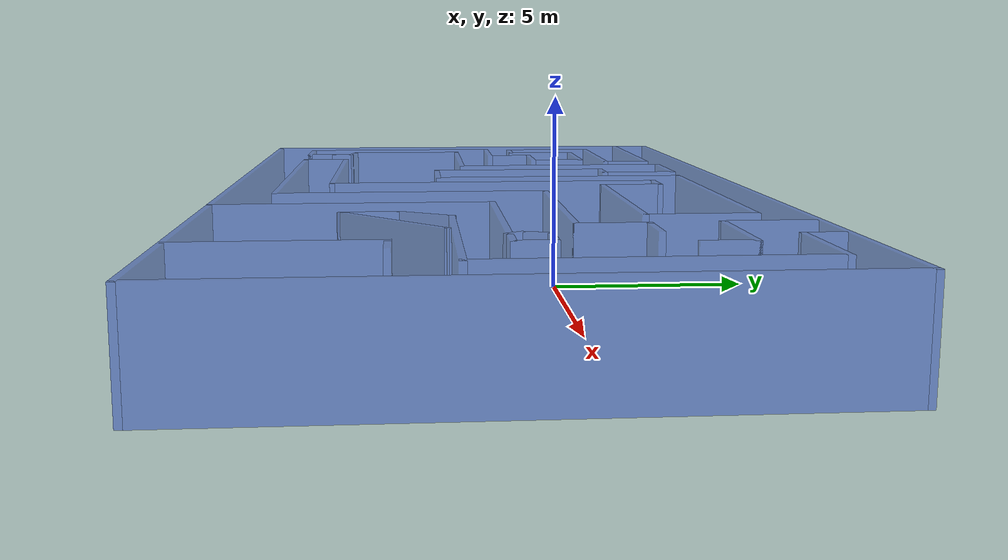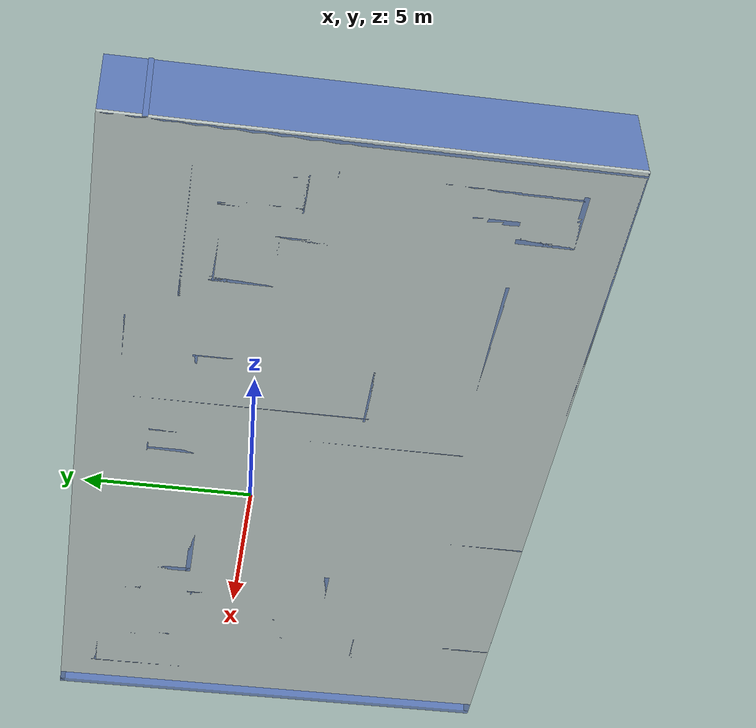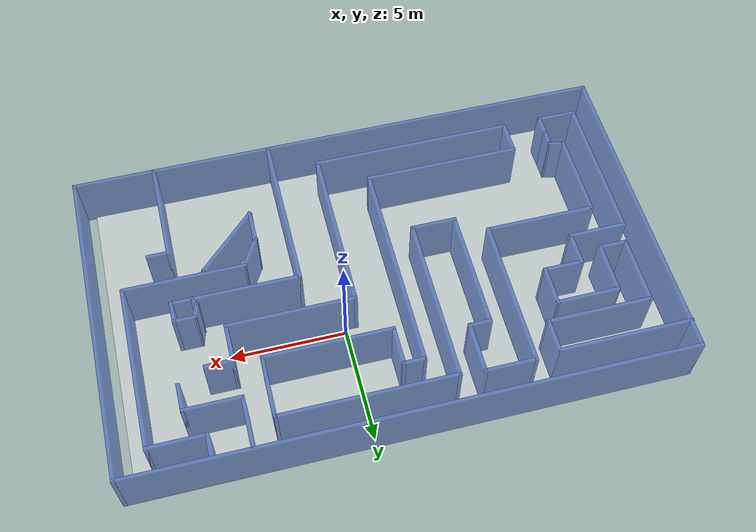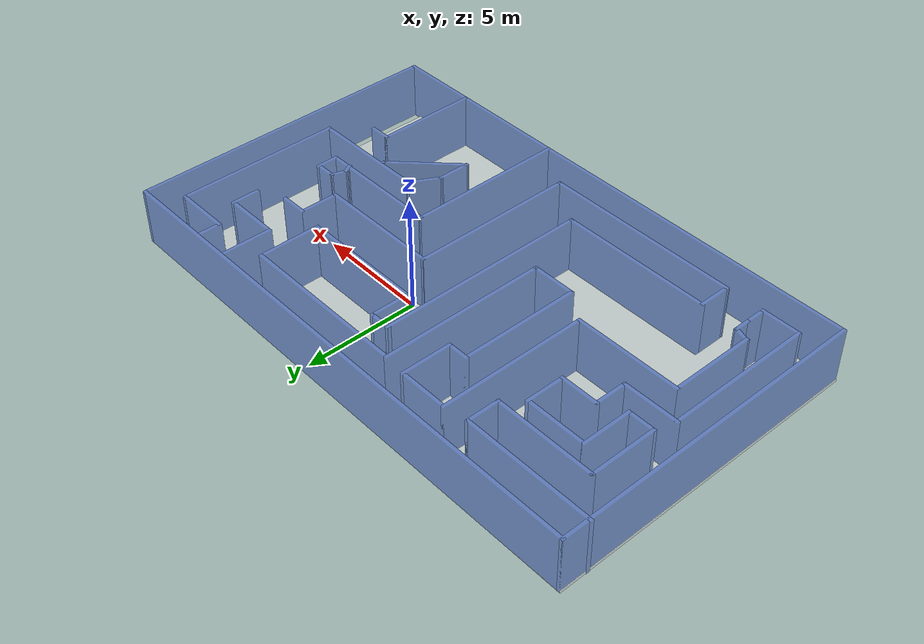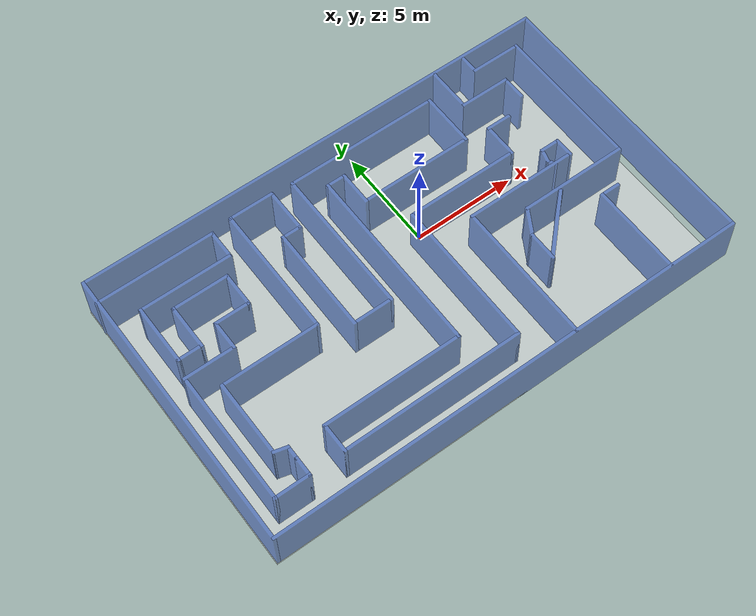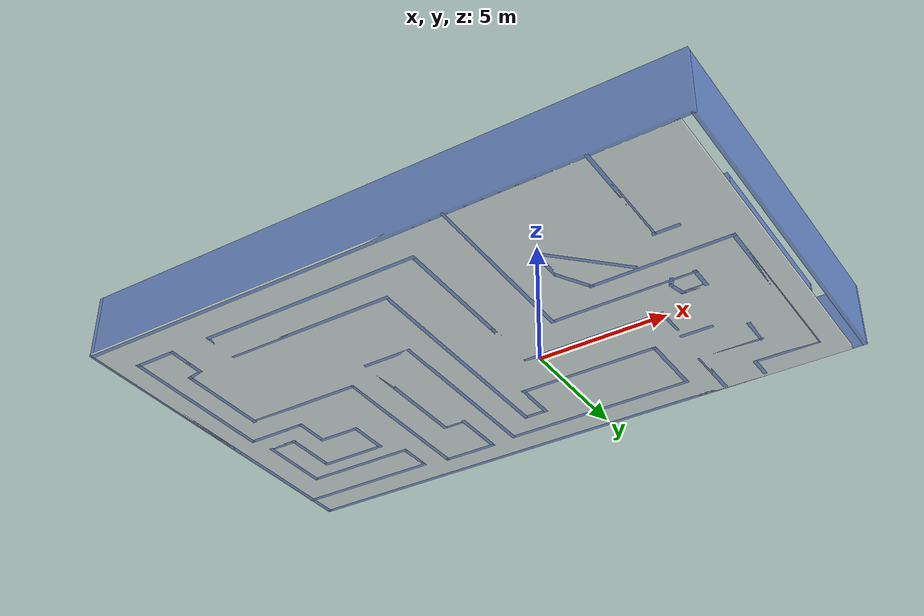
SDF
<?xml version='1.0'?>
<sdf version='1.6'>
  <model name='floor_smal'>
    <pose frame=''>-1.65189 -1.66054 0 0 -0 0</pose>
    <link name='Floor'>
      <collision name='Floor'>
        <geometry>
          <box>
            <size>524.25 169.5 0.1</size>
          </box>
        </geometry>
        <pose frame=''>0 0 0.05 0 -0 0</pose>
      </collision>
      <visual name='Floor'>
        <pose frame=''>0 0 0.05 0 -0 0</pose>
        <geometry>
          <box>
            <size>23 14 0.1</size>
          </box>
        </geometry>
        <material>
          <script>
            <uri>file://media/materials/scripts/gazebo.material</uri>
            <name>Gazebo/WhiteTransparent</name>
          </script>
          <ambient>0 0 0 0</ambient>
        </material>
        <meta>
          <layer>1</layer>
        </meta>
      </visual>
      <pose frame=''>-0.250009 -2e-06 0 0 -0 0</pose>
    </link>
    <link name='Wall_10'>
      <collision name='Wall_10_Collision'>
        <geometry>
          <box>
            <size>5.75 0.15 2.5</size>
          </box>
        </geometry>
        <pose frame=''>0 0 1.25 0 -0 0</pose>
      </collision>
      <visual name='Wall_10_Visual'>
        <pose frame=''>0 0 1.25 0 -0 0</pose>
        <geometry>
          <box>
            <size>5.75 0.15 2.5</size>
          </box>
        </geometry>
        <material>
          <script>
            <uri>file://media/materials/scripts/gazebo.material</uri>
            <name>Gazebo/BlueTransparent</name>
          </script>
          <ambient>1 1 1 1</ambient>
        </material>
        <meta>
          <layer>0</layer>
        </meta>
      </visual>
      <pose frame=''>-8.89523 5.77805 0 0 -0 0</pose>
    </link>
    <link name='Wall_11'>
      <collision name='Wall_11_Collision'>
        <geometry>
          <box>
            <size>1.5 0.15 2.5</size>
          </box>
        </geometry>
        <pose frame=''>0 0 1.25 0 -0 0</pose>
      </collision>
      <visual name='Wall_11_Visual'>
        <pose frame=''>0 0 1.25 0 -0 0</pose>
        <geometry>
          <box>
            <size>1.5 0.15 2.5</size>
          </box>
        </geometry>
        <material>
          <script>
            <uri>file://media/materials/scripts/gazebo.material</uri>
            <name>Gazebo/BlueTransparent</name>
          </script>
          <ambient>1 1 1 1</ambient>
        </material>
        <meta>
          <layer>0</layer>
        </meta>
      </visual>
      <pose frame=''>-6.09523 5.10305 0 0 -0 -1.5708</pose>
    </link>
    <link name='Wall_12'>
      <collision name='Wall_12_Collision'>
        <geometry>
          <box>
            <size>4.5 0.15 2.5</size>
          </box>
        </geometry>
        <pose frame=''>0 0 1.25 0 -0 0</pose>
      </collision>
      <visual name='Wall_12_Visual'>
        <pose frame=''>0 0 1.25 0 -0 0</pose>
        <geometry>
          <box>
            <size>4.5 0.15 2.5</size>
          </box>
        </geometry>
        <material>
          <script>
            <uri>file://media/materials/scripts/gazebo.material</uri>
            <name>Gazebo/BlueTransparent</name>
          </script>
          <ambient>1 1 1 1</ambient>
        </material>
        <meta>
          <layer>0</layer>
        </meta>
      </visual>
      <pose frame=''>-8.27023 4.42805 0 0 -0 3.14159</pose>
    </link>
    <link name='Wall_13'>
      <collision name='Wall_13_Collision'>
        <geometry>
          <box>
            <size>3 0.15 2.5</size>
          </box>
        </geometry>
        <pose frame=''>0 0 1.25 0 -0 0</pose>
      </collision>
      <visual name='Wall_13_Visual'>
        <pose frame=''>0 0 1.25 0 -0 0</pose>
        <geometry>
          <box>
            <size>3 0.15 2.5</size>
          </box>
        </geometry>
        <material>
          <script>
            <uri>file://media/materials/scripts/gazebo.material</uri>
            <name>Gazebo/BlueTransparent</name>
          </script>
          <ambient>1 1 1 1</ambient>
        </material>
        <meta>
          <layer>0</layer>
        </meta>
      </visual>
      <pose frame=''>-10.4452 3.00305 0 0 -0 -1.5708</pose>
    </link>
    <link name='Wall_14'>
      <collision name='Wall_14_Collision'>
        <geometry>
          <box>
            <size>1.25 0.15 2.5</size>
          </box>
        </geometry>
        <pose frame=''>0 0 1.25 0 -0 0</pose>
      </collision>
      <visual name='Wall_14_Visual'>
        <pose frame=''>0 0 1.25 0 -0 0</pose>
        <geometry>
          <box>
            <size>1.25 0.15 2.5</size>
          </box>
        </geometry>
        <material>
          <script>
            <uri>file://media/materials/scripts/gazebo.material</uri>
            <name>Gazebo/BlueTransparent</name>
          </script>
          <ambient>1 1 1 1</ambient>
        </material>
        <meta>
          <layer>0</layer>
        </meta>
      </visual>
      <pose frame=''>-9.89523 1.57805 0 0 -0 0</pose>
    </link>
    <link name='Wall_15'>
      <collision name='Wall_15_Collision'>
        <geometry>
          <box>
            <size>2.25 0.15 2.5</size>
          </box>
        </geometry>
        <pose frame=''>0 0 1.25 0 -0 0</pose>
      </collision>
      <visual name='Wall_15_Visual'>
        <pose frame=''>0 0 1.25 0 -0 0</pose>
        <geometry>
          <box>
            <size>2.25 0.15 2.5</size>
          </box>
        </geometry>
        <material>
          <script>
            <uri>file://media/materials/scripts/gazebo.material</uri>
            <name>Gazebo/BlueTransparent</name>
          </script>
          <ambient>1 1 1 1</ambient>
        </material>
        <meta>
          <layer>0</layer>
        </meta>
      </visual>
      <pose frame=''>-9.34523 2.62805 0 0 -0 1.5708</pose>
    </link>
    <link name='Wall_16'>
      <collision name='Wall_16_Collision'>
        <geometry>
          <box>
            <size>2.75 0.15 2.5</size>
          </box>
        </geometry>
        <pose frame=''>0 0 1.25 0 -0 0</pose>
      </collision>
      <visual name='Wall_16_Visual'>
        <pose frame=''>0 0 1.25 0 -0 0</pose>
        <geometry>
          <box>
            <size>2.75 0.15 2.5</size>
          </box>
        </geometry>
        <material>
          <script>
            <uri>file://media/materials/scripts/gazebo.material</uri>
            <name>Gazebo/BlueTransparent</name>
          </script>
          <ambient>1 1 1 1</ambient>
        </material>
        <meta>
          <layer>0</layer>
        </meta>
      </visual>
      <pose frame=''>-8.04523 3.67805 0 0 -0 0</pose>
    </link>
    <link name='Wall_17'>
      <collision name='Wall_17_Collision'>
        <geometry>
          <box>
            <size>1.75 0.15 2.5</size>
          </box>
        </geometry>
        <pose frame=''>0 0 1.25 0 -0 0</pose>
      </collision>
      <visual name='Wall_17_Visual'>
        <pose frame=''>0 0 1.25 0 -0 0</pose>
        <geometry>
          <box>
            <size>1.75 0.15 2.5</size>
          </box>
        </geometry>
        <material>
          <script>
            <uri>file://media/materials/scripts/gazebo.material</uri>
            <name>Gazebo/BlueTransparent</name>
          </script>
          <ambient>1 1 1 1</ambient>
        </material>
        <meta>
          <layer>0</layer>
        </meta>
      </visual>
      <pose frame=''>-6.74523 2.87805 0 0 -0 -1.5708</pose>
    </link>
    <link name='Wall_18'>
      <collision name='Wall_18_Collision'>
        <geometry>
          <box>
            <size>1.75 0.15 2.5</size>
          </box>
        </geometry>
        <pose frame=''>0 0 1.25 0 -0 0</pose>
      </collision>
      <visual name='Wall_18_Visual'>
        <pose frame=''>0 0 1.25 0 -0 0</pose>
        <geometry>
          <box>
            <size>1.75 0.15 2.5</size>
          </box>
        </geometry>
        <material>
          <script>
            <uri>file://media/materials/scripts/gazebo.material</uri>
            <name>Gazebo/BlueTransparent</name>
          </script>
          <ambient>1 1 1 1</ambient>
        </material>
        <meta>
          <layer>0</layer>
        </meta>
      </visual>
      <pose frame=''>-7.54523 2.07805 0 0 -0 3.14159</pose>
    </link>
    <link name='Wall_19'>
      <collision name='Wall_19_Collision'>
        <geometry>
          <box>
            <size>1.5 0.15 2.5</size>
          </box>
        </geometry>
        <pose frame=''>0 0 1.25 0 -0 0</pose>
      </collision>
      <visual name='Wall_19_Visual'>
        <pose frame=''>0 0 1.25 0 -0 0</pose>
        <geometry>
          <box>
            <size>1.5 0.15 2.5</size>
          </box>
        </geometry>
        <material>
          <script>
            <uri>file://media/materials/scripts/gazebo.material</uri>
            <name>Gazebo/BlueTransparent</name>
          </script>
          <ambient>1 1 1 1</ambient>
        </material>
        <meta>
          <layer>0</layer>
        </meta>
      </visual>
      <pose frame=''>-8.34523 1.40305 0 0 -0 -1.5708</pose>
    </link>
    <link name='Wall_20'>
      <collision name='Wall_20_Collision'>
        <geometry>
          <box>
            <size>2.5 0.15 2.5</size>
          </box>
        </geometry>
        <pose frame=''>0 0 1.25 0 -0 0</pose>
      </collision>
      <visual name='Wall_20_Visual'>
        <pose frame=''>0 0 1.25 0 -0 0</pose>
        <geometry>
          <box>
            <size>2.5 0.15 2.5</size>
          </box>
        </geometry>
        <material>
          <script>
            <uri>file://media/materials/scripts/gazebo.material</uri>
            <name>Gazebo/BlueTransparent</name>
          </script>
          <ambient>1 1 1 1</ambient>
        </material>
        <meta>
          <layer>0</layer>
        </meta>
      </visual>
      <pose frame=''>-9.52023 0.728051 0 0 -0 3.14159</pose>
    </link>
    <link name='Wall_21'>
      <collision name='Wall_21_Collision'>
        <geometry>
          <box>
            <size>6.5 0.15 2.5</size>
          </box>
        </geometry>
        <pose frame=''>0 0 1.25 0 -0 0</pose>
      </collision>
      <visual name='Wall_21_Visual'>
        <pose frame=''>0 0 1.25 0 -0 0</pose>
        <geometry>
          <box>
            <size>6.5 0.15 2.5</size>
          </box>
        </geometry>
        <material>
          <script>
            <uri>file://media/materials/scripts/gazebo.material</uri>
            <name>Gazebo/BlueTransparent</name>
          </script>
          <ambient>1 1 1 1</ambient>
        </material>
        <meta>
          <layer>0</layer>
        </meta>
      </visual>
      <pose frame=''>-10.6952 -2.44695 0 0 -0 -1.5708</pose>
    </link>
    <link name='Wall_22'>
      <collision name='Wall_22_Collision'>
        <geometry>
          <box>
            <size>1.75 0.15 2.5</size>
          </box>
        </geometry>
        <pose frame=''>0 0 1.25 0 -0 0</pose>
      </collision>
      <visual name='Wall_22_Visual'>
        <pose frame=''>0 0 1.25 0 -0 0</pose>
        <geometry>
          <box>
            <size>1.75 0.15 2.5</size>
          </box>
        </geometry>
        <material>
          <script>
            <uri>file://media/materials/scripts/gazebo.material</uri>
            <name>Gazebo/BlueTransparent</name>
          </script>
          <ambient>1 1 1 1</ambient>
        </material>
        <meta>
          <layer>0</layer>
        </meta>
      </visual>
      <pose frame=''>-9.89523 -5.62195 0 0 -0 0</pose>
    </link>
    <link name='Wall_23'>
      <collision name='Wall_23_Collision'>
        <geometry>
          <box>
            <size>1 0.15 2.5</size>
          </box>
        </geometry>
        <pose frame=''>0 0 1.25 0 -0 0</pose>
      </collision>
      <visual name='Wall_23_Visual'>
        <pose frame=''>0 0 1.25 0 -0 0</pose>
        <geometry>
          <box>
            <size>1 0.15 2.5</size>
          </box>
        </geometry>
        <material>
          <script>
            <uri>file://media/materials/scripts/gazebo.material</uri>
            <name>Gazebo/BlueTransparent</name>
          </script>
          <ambient>1 1 1 1</ambient>
        </material>
        <meta>
          <layer>0</layer>
        </meta>
      </visual>
      <pose frame=''>-9.09523 -5.19695 0 0 -0 1.5708</pose>
    </link>
    <link name='Wall_24'>
      <collision name='Wall_24_Collision'>
        <geometry>
          <box>
            <size>0.75 0.15 2.5</size>
          </box>
        </geometry>
        <pose frame=''>0 0 1.25 0 -0 0</pose>
      </collision>
      <visual name='Wall_24_Visual'>
        <pose frame=''>0 0 1.25 0 -0 0</pose>
        <geometry>
          <box>
            <size>0.75 0.15 2.5</size>
          </box>
        </geometry>
        <material>
          <script>
            <uri>file://media/materials/scripts/gazebo.material</uri>
            <name>Gazebo/BlueTransparent</name>
          </script>
          <ambient>1 1 1 1</ambient>
        </material>
        <meta>
          <layer>0</layer>
        </meta>
      </visual>
      <pose frame=''>-9.09523 -4.47195 0 0 -0 1.5708</pose>
    </link>
    <link name='Wall_25'>
      <collision name='Wall_25_Collision'>
        <geometry>
          <box>
            <size>0.75 0.15 2.5</size>
          </box>
        </geometry>
        <pose frame=''>0 0 1.25 0 -0 0</pose>
      </collision>
      <visual name='Wall_25_Visual'>
        <pose frame=''>0 0 1.25 0 -0 0</pose>
        <geometry>
          <box>
            <size>0.75 0.15 2.5</size>
          </box>
        </geometry>
        <material>
          <script>
            <uri>file://media/materials/scripts/gazebo.material</uri>
            <name>Gazebo/BlueTransparent</name>
          </script>
          <ambient>1 1 1 1</ambient>
        </material>
        <meta>
          <layer>0</layer>
        </meta>
      </visual>
      <pose frame=''>-9.385 -4.0943 0 0 -0 2.87979</pose>
    </link>
    <link name='Wall_26'>
      <collision name='Wall_26_Collision'>
        <geometry>
          <box>
            <size>3.75 0.15 2.5</size>
          </box>
        </geometry>
        <pose frame=''>0 0 1.25 0 -0 0</pose>
      </collision>
      <visual name='Wall_26_Visual'>
        <pose frame=''>0 0 1.25 0 -0 0</pose>
        <geometry>
          <box>
            <size>3.75 0.15 2.5</size>
          </box>
        </geometry>
        <material>
          <script>
            <uri>file://media/materials/scripts/gazebo.material</uri>
            <name>Gazebo/BlueTransparent</name>
          </script>
          <ambient>1 1 1 1</ambient>
        </material>
        <meta>
          <layer>0</layer>
        </meta>
      </visual>
      <pose frame=''>-9.67478 -2.21666 0 0 -0 1.5708</pose>
    </link>
    <link name='Wall_27'>
      <collision name='Wall_27_Collision'>
        <geometry>
          <box>
            <size>4.75 0.15 2.5</size>
          </box>
        </geometry>
        <pose frame=''>0 0 1.25 0 -0 0</pose>
      </collision>
      <visual name='Wall_27_Visual'>
        <pose frame=''>0 0 1.25 0 -0 0</pose>
        <geometry>
          <box>
            <size>4.75 0.15 2.5</size>
          </box>
        </geometry>
        <material>
          <script>
            <uri>file://media/materials/scripts/gazebo.material</uri>
            <name>Gazebo/BlueTransparent</name>
          </script>
          <ambient>1 1 1 1</ambient>
        </material>
        <meta>
          <layer>0</layer>
        </meta>
      </visual>
      <pose frame=''>-7.37478 -0.416657 0 0 -0 0</pose>
    </link>
    <link name='Wall_28'>
      <collision name='Wall_28_Collision'>
        <geometry>
          <box>
            <size>6.5 0.15 2.5</size>
          </box>
        </geometry>
        <pose frame=''>0 0 1.25 0 -0 0</pose>
      </collision>
      <visual name='Wall_28_Visual'>
        <pose frame=''>0 0 1.25 0 -0 0</pose>
        <geometry>
          <box>
            <size>6.5 0.15 2.5</size>
          </box>
        </geometry>
        <material>
          <script>
            <uri>file://media/materials/scripts/gazebo.material</uri>
            <name>Gazebo/BlueTransparent</name>
          </script>
          <ambient>1 1 1 1</ambient>
        </material>
        <meta>
          <layer>0</layer>
        </meta>
      </visual>
      <pose frame=''>-5.07478 2.75834 0 0 -0 1.5708</pose>
    </link>
    <link name='Wall_29'>
      <collision name='Wall_29_Collision'>
        <geometry>
          <box>
            <size>2.25 0.15 2.5</size>
          </box>
        </geometry>
        <pose frame=''>0 0 1.25 0 -0 0</pose>
      </collision>
      <visual name='Wall_29_Visual'>
        <pose frame=''>0 0 1.25 0 -0 0</pose>
        <geometry>
          <box>
            <size>2.25 0.15 2.5</size>
          </box>
        </geometry>
        <material>
          <script>
            <uri>file://media/materials/scripts/gazebo.material</uri>
            <name>Gazebo/BlueTransparent</name>
          </script>
          <ambient>1 1 1 1</ambient>
        </material>
        <meta>
          <layer>0</layer>
        </meta>
      </visual>
      <pose frame=''>-4.02478 5.93334 0 0 -0 0</pose>
    </link>
    <link name='Wall_3'>
      <collision name='Wall_3_Collision'>
        <geometry>
          <box>
            <size>14 0.15 2.5</size>
          </box>
        </geometry>
        <pose frame=''>0 0 1.25 0 -0 0</pose>
      </collision>
      <visual name='Wall_3_Visual'>
        <pose frame=''>0 0 1.25 0 -0 0</pose>
        <geometry>
          <box>
            <size>14 0.15 2.5</size>
          </box>
        </geometry>
        <material>
          <script>
            <uri>file://media/materials/scripts/gazebo.material</uri>
            <name>Gazebo/BlueTransparent</name>
          </script>
          <ambient>1 1 1 1</ambient>
        </material>
        <meta>
          <layer>0</layer>
        </meta>
      </visual>
      <pose frame=''>-11.6548 -0 0 0 -0 1.5708</pose>
    </link>
    <link name='Wall_30'>
      <collision name='Wall_30_Collision'>
        <geometry>
          <box>
            <size>2.25 0.15 2.5</size>
          </box>
        </geometry>
        <pose frame=''>0 0 1.25 0 -0 0</pose>
      </collision>
      <visual name='Wall_30_Visual'>
        <pose frame=''>0 0 1.25 0 -0 0</pose>
        <geometry>
          <box>
            <size>2.25 0.15 2.5</size>
          </box>
        </geometry>
        <material>
          <script>
            <uri>file://media/materials/scripts/gazebo.material</uri>
            <name>Gazebo/BlueTransparent</name>
          </script>
          <ambient>1 1 1 1</ambient>
        </material>
        <meta>
          <layer>0</layer>
        </meta>
      </visual>
      <pose frame=''>-2.97478 4.88334 0 0 -0 -1.5708</pose>
    </link>
    <link name='Wall_31'>
      <collision name='Wall_31_Collision'>
        <geometry>
          <box>
            <size>1 0.15 2.5</size>
          </box>
        </geometry>
        <pose frame=''>0 0 1.25 0 -0 0</pose>
      </collision>
      <visual name='Wall_31_Visual'>
        <pose frame=''>0 0 1.25 0 -0 0</pose>
        <geometry>
          <box>
            <size>1 0.15 2.5</size>
          </box>
        </geometry>
        <material>
          <script>
            <uri>file://media/materials/scripts/gazebo.material</uri>
            <name>Gazebo/BlueTransparent</name>
          </script>
          <ambient>1 1 1 1</ambient>
        </material>
        <meta>
          <layer>0</layer>
        </meta>
      </visual>
      <pose frame=''>-3.39978 3.83334 0 0 -0 3.14159</pose>
    </link>
    <link name='Wall_32'>
      <collision name='Wall_32_Collision'>
        <geometry>
          <box>
            <size>5.25 0.15 2.5</size>
          </box>
        </geometry>
        <pose frame=''>0 0 1.25 0 -0 0</pose>
      </collision>
      <visual name='Wall_32_Visual'>
        <pose frame=''>0 0 1.25 0 -0 0</pose>
        <geometry>
          <box>
            <size>5.25 0.15 2.5</size>
          </box>
        </geometry>
        <material>
          <script>
            <uri>file://media/materials/scripts/gazebo.material</uri>
            <name>Gazebo/BlueTransparent</name>
          </script>
          <ambient>1 1 1 1</ambient>
        </material>
        <meta>
          <layer>0</layer>
        </meta>
      </visual>
      <pose frame=''>-3.82478 1.28334 0 0 -0 -1.5708</pose>
    </link>
    <link name='Wall_33'>
      <collision name='Wall_33_Collision'>
        <geometry>
          <box>
            <size>2 0.15 2.5</size>
          </box>
        </geometry>
        <pose frame=''>0 0 1.25 0 -0 0</pose>
      </collision>
      <visual name='Wall_33_Visual'>
        <pose frame=''>0 0 1.25 0 -0 0</pose>
        <geometry>
          <box>
            <size>2 0.15 2.5</size>
          </box>
        </geometry>
        <material>
          <script>
            <uri>file://media/materials/scripts/gazebo.material</uri>
            <name>Gazebo/BlueTransparent</name>
          </script>
          <ambient>1 1 1 1</ambient>
        </material>
        <meta>
          <layer>0</layer>
        </meta>
      </visual>
      <pose frame=''>-2.89978 -1.26666 0 0 -0 0</pose>
    </link>
    <link name='Wall_34'>
      <collision name='Wall_34_Collision'>
        <geometry>
          <box>
            <size>7.25 0.15 2.5</size>
          </box>
        </geometry>
        <pose frame=''>0 0 1.25 0 -0 0</pose>
      </collision>
      <visual name='Wall_34_Visual'>
        <pose frame=''>0 0 1.25 0 -0 0</pose>
        <geometry>
          <box>
            <size>7.25 0.15 2.5</size>
          </box>
        </geometry>
        <material>
          <script>
            <uri>file://media/materials/scripts/gazebo.material</uri>
            <name>Gazebo/BlueTransparent</name>
          </script>
          <ambient>1 1 1 1</ambient>
        </material>
        <meta>
          <layer>0</layer>
        </meta>
      </visual>
      <pose frame=''>-1.97478 2.28334 0 0 -0 1.5708</pose>
    </link>
    <link name='Wall_35'>
      <collision name='Wall_35_Collision'>
        <geometry>
          <box>
            <size>7.5 0.15 2.5</size>
          </box>
        </geometry>
        <pose frame=''>0 0 1.25 0 -0 0</pose>
      </collision>
      <visual name='Wall_35_Visual'>
        <pose frame=''>0 0 1.25 0 -0 0</pose>
        <geometry>
          <box>
            <size>7.5 0.15 2.5</size>
          </box>
        </geometry>
        <material>
          <script>
            <uri>file://media/materials/scripts/gazebo.material</uri>
            <name>Gazebo/BlueTransparent</name>
          </script>
          <ambient>1 1 1 1</ambient>
        </material>
        <meta>
          <layer>0</layer>
        </meta>
      </visual>
      <pose frame=''>1.70022 5.83334 0 0 -0 0</pose>
    </link>
    <link name='Wall_36'>
      <collision name='Wall_36_Collision'>
        <geometry>
          <box>
            <size>2.75 0.15 2.5</size>
          </box>
        </geometry>
        <pose frame=''>0 0 1.25 0 -0 0</pose>
      </collision>
      <visual name='Wall_36_Visual'>
        <pose frame=''>0 0 1.25 0 -0 0</pose>
        <geometry>
          <box>
            <size>2.75 0.15 2.5</size>
          </box>
        </geometry>
        <material>
          <script>
            <uri>file://media/materials/scripts/gazebo.material</uri>
            <name>Gazebo/BlueTransparent</name>
          </script>
          <ambient>1 1 1 1</ambient>
        </material>
        <meta>
          <layer>0</layer>
        </meta>
      </visual>
      <pose frame=''>5.37522 4.53334 0 0 -0 -1.5708</pose>
    </link>
    <link name='Wall_37'>
      <collision name='Wall_37_Collision'>
        <geometry>
          <box>
            <size>5.5 0.15 2.5</size>
          </box>
        </geometry>
        <pose frame=''>0 0 1.25 0 -0 0</pose>
      </collision>
      <visual name='Wall_37_Visual'>
        <pose frame=''>0 0 1.25 0 -0 0</pose>
        <geometry>
          <box>
            <size>5.5 0.15 2.5</size>
          </box>
        </geometry>
        <material>
          <script>
            <uri>file://media/materials/scripts/gazebo.material</uri>
            <name>Gazebo/BlueTransparent</name>
          </script>
          <ambient>1 1 1 1</ambient>
        </material>
        <meta>
          <layer>0</layer>
        </meta>
      </visual>
      <pose frame=''>2.70022 3.23334 0 0 -0 3.14159</pose>
    </link>
    <link name='Wall_38'>
      <collision name='Wall_38_Collision'>
        <geometry>
          <box>
            <size>1.75 0.15 2.5</size>
          </box>
        </geometry>
        <pose frame=''>0 0 1.25 0 -0 0</pose>
      </collision>
      <visual name='Wall_38_Visual'>
        <pose frame=''>0 0 1.25 0 -0 0</pose>
        <geometry>
          <box>
            <size>1.75 0.15 2.5</size>
          </box>
        </geometry>
        <material>
          <script>
            <uri>file://media/materials/scripts/gazebo.material</uri>
            <name>Gazebo/BlueTransparent</name>
          </script>
          <ambient>1 1 1 1</ambient>
        </material>
        <meta>
          <layer>0</layer>
        </meta>
      </visual>
      <pose frame=''>0.025216 4.03334 0 0 -0 1.5708</pose>
    </link>
    <link name='Wall_39'>
      <collision name='Wall_39_Collision'>
        <geometry>
          <box>
            <size>1 0.15 2.5</size>
          </box>
        </geometry>
        <pose frame=''>0 0 1.25 0 -0 0</pose>
      </collision>
      <visual name='Wall_39_Visual'>
        <pose frame=''>0 0 1.25 0 -0 0</pose>
        <geometry>
          <box>
            <size>1 0.15 2.5</size>
          </box>
        </geometry>
        <material>
          <script>
            <uri>file://media/materials/scripts/gazebo.material</uri>
            <name>Gazebo/BlueTransparent</name>
          </script>
          <ambient>1 1 1 1</ambient>
        </material>
        <meta>
          <layer>0</layer>
        </meta>
      </visual>
      <pose frame=''>-0.399784 4.83334 0 0 -0 3.14159</pose>
    </link>
    <link name='Wall_4'>
      <collision name='Wall_4_Collision'>
        <geometry>
          <box>
            <size>23.5 0.15 2.5</size>
          </box>
        </geometry>
        <pose frame=''>0 0 1.25 0 -0 0</pose>
      </collision>
      <visual name='Wall_4_Visual'>
        <pose frame=''>0 0 1.25 0 -0 0</pose>
        <geometry>
          <box>
            <size>23.5 0.15 2.5</size>
          </box>
        </geometry>
        <material>
          <script>
            <uri>file://media/materials/scripts/gazebo.material</uri>
            <name>Gazebo/BlueTransparent</name>
          </script>
          <ambient>1 1 1 1</ambient>
        </material>
        <meta>
          <layer>0</layer>
        </meta>
      </visual>
      <pose frame=''>0.020228 6.925 0 0 -0 0</pose>
    </link>
    <link name='Wall_40'>
      <collision name='Wall_40_Collision'>
        <geometry>
          <box>
            <size>9.25 0.15 2.5</size>
          </box>
        </geometry>
        <pose frame=''>0 0 1.25 0 -0 0</pose>
      </collision>
      <visual name='Wall_40_Visual'>
        <pose frame=''>0 0 1.25 0 -0 0</pose>
        <geometry>
          <box>
            <size>9.25 0.15 2.5</size>
          </box>
        </geometry>
        <material>
          <script>
            <uri>file://media/materials/scripts/gazebo.material</uri>
            <name>Gazebo/BlueTransparent</name>
          </script>
          <ambient>1 1 1 1</ambient>
        </material>
        <meta>
          <layer>0</layer>
        </meta>
      </visual>
      <pose frame=''>-0.824784 0.283343 0 0 -0 -1.5708</pose>
    </link>
    <link name='Wall_41'>
      <collision name='Wall_41_Collision'>
        <geometry>
          <box>
            <size>6.75 0.15 2.5</size>
          </box>
        </geometry>
        <pose frame=''>0 0 1.25 0 -0 0</pose>
      </collision>
      <visual name='Wall_41_Visual'>
        <pose frame=''>0 0 1.25 0 -0 0</pose>
        <geometry>
          <box>
            <size>6.75 0.15 2.5</size>
          </box>
        </geometry>
        <material>
          <script>
            <uri>file://media/materials/scripts/gazebo.material</uri>
            <name>Gazebo/BlueTransparent</name>
          </script>
          <ambient>1 1 1 1</ambient>
        </material>
        <meta>
          <layer>0</layer>
        </meta>
      </visual>
      <pose frame=''>-4.12478 -4.26666 0 0 -0 3.14159</pose>
    </link>
    <link name='Wall_42'>
      <collision name='Wall_42_Collision'>
        <geometry>
          <box>
            <size>1.5 0.15 2.5</size>
          </box>
        </geometry>
        <pose frame=''>0 0 1.25 0 -0 0</pose>
      </collision>
      <visual name='Wall_42_Visual'>
        <pose frame=''>0 0 1.25 0 -0 0</pose>
        <geometry>
          <box>
            <size>1.5 0.15 2.5</size>
          </box>
        </geometry>
        <material>
          <script>
            <uri>file://media/materials/scripts/gazebo.material</uri>
            <name>Gazebo/BlueTransparent</name>
          </script>
          <ambient>1 1 1 1</ambient>
        </material>
        <meta>
          <layer>0</layer>
        </meta>
      </visual>
      <pose frame=''>-7.42478 -4.94166 0 0 -0 -1.5708</pose>
    </link>
    <link name='Wall_43'>
      <collision name='Wall_43_Collision'>
        <geometry>
          <box>
            <size>8.75 0.15 2.5</size>
          </box>
        </geometry>
        <pose frame=''>0 0 1.25 0 -0 0</pose>
      </collision>
      <visual name='Wall_43_Visual'>
        <pose frame=''>0 0 1.25 0 -0 0</pose>
        <geometry>
          <box>
            <size>8.75 0.15 2.5</size>
          </box>
        </geometry>
        <material>
          <script>
            <uri>file://media/materials/scripts/gazebo.material</uri>
            <name>Gazebo/BlueTransparent</name>
          </script>
          <ambient>1 1 1 1</ambient>
        </material>
        <meta>
          <layer>0</layer>
        </meta>
      </visual>
      <pose frame=''>-3.12478 -5.61666 0 0 -0 0</pose>
    </link>
    <link name='Wall_44'>
      <collision name='Wall_44_Collision'>
        <geometry>
          <box>
            <size>7.25 0.15 2.5</size>
          </box>
        </geometry>
        <pose frame=''>0 0 1.25 0 -0 0</pose>
      </collision>
      <visual name='Wall_44_Visual'>
        <pose frame=''>0 0 1.25 0 -0 0</pose>
        <geometry>
          <box>
            <size>7.25 0.15 2.5</size>
          </box>
        </geometry>
        <material>
          <script>
            <uri>file://media/materials/scripts/gazebo.material</uri>
            <name>Gazebo/BlueTransparent</name>
          </script>
          <ambient>1 1 1 1</ambient>
        </material>
        <meta>
          <layer>0</layer>
        </meta>
      </visual>
      <pose frame=''>1.17522 -2.06666 0 0 -0 1.5708</pose>
    </link>
    <link name='Wall_45'>
      <collision name='Wall_45_Collision'>
        <geometry>
          <box>
            <size>5.5 0.15 2.5</size>
          </box>
        </geometry>
        <pose frame=''>0 0 1.25 0 -0 0</pose>
      </collision>
      <visual name='Wall_45_Visual'>
        <pose frame=''>0 0 1.25 0 -0 0</pose>
        <geometry>
          <box>
            <size>5.5 0.15 2.5</size>
          </box>
        </geometry>
        <material>
          <script>
            <uri>file://media/materials/scripts/gazebo.material</uri>
            <name>Gazebo/BlueTransparent</name>
          </script>
          <ambient>1 1 1 1</ambient>
        </material>
        <meta>
          <layer>0</layer>
        </meta>
      </visual>
      <pose frame=''>3.85022 1.48334 0 0 -0 0</pose>
    </link>
    <link name='Wall_46'>
      <collision name='Wall_46_Collision'>
        <geometry>
          <box>
            <size>1.75 0.15 2.5</size>
          </box>
        </geometry>
        <pose frame=''>0 0 1.25 0 -0 0</pose>
      </collision>
      <visual name='Wall_46_Visual'>
        <pose frame=''>0 0 1.25 0 -0 0</pose>
        <geometry>
          <box>
            <size>1.75 0.15 2.5</size>
          </box>
        </geometry>
        <material>
          <script>
            <uri>file://media/materials/scripts/gazebo.material</uri>
            <name>Gazebo/BlueTransparent</name>
          </script>
          <ambient>1 1 1 1</ambient>
        </material>
        <meta>
          <layer>0</layer>
        </meta>
      </visual>
      <pose frame=''>6.52522 2.28334 0 0 -0 1.5708</pose>
    </link>
    <link name='Wall_48'>
      <collision name='Wall_48_Collision'>
        <geometry>
          <box>
            <size>7 0.15 2.5</size>
          </box>
        </geometry>
        <pose frame=''>0 0 1.25 0 -0 0</pose>
      </collision>
      <visual name='Wall_48_Visual'>
        <pose frame=''>0 0 1.25 0 -0 0</pose>
        <geometry>
          <box>
            <size>7 0.15 2.5</size>
          </box>
        </geometry>
        <material>
          <script>
            <uri>file://media/materials/scripts/gazebo.material</uri>
            <name>Gazebo/BlueTransparent</name>
          </script>
          <ambient>1 1 1 1</ambient>
        </material>
        <meta>
          <layer>0</layer>
        </meta>
      </visual>
      <pose frame=''>3.15197 -3.5 0 0 -0 1.5708</pose>
    </link>
    <link name='Wall_49'>
      <collision name='Wall_49_Collision'>
        <geometry>
          <box>
            <size>5.5 0.15 2.5</size>
          </box>
        </geometry>
        <pose frame=''>0 0 1.25 0 -0 0</pose>
      </collision>
      <visual name='Wall_49_Visual'>
        <pose frame=''>0 0 1.25 0 -0 0</pose>
        <geometry>
          <box>
            <size>5.5 0.15 2.5</size>
          </box>
        </geometry>
        <material>
          <script>
            <uri>file://media/materials/scripts/gazebo.material</uri>
            <name>Gazebo/BlueTransparent</name>
          </script>
          <ambient>1 1 1 1</ambient>
        </material>
        <meta>
          <layer>0</layer>
        </meta>
      </visual>
      <pose frame=''>5.82697 -0.075 0 0 -0 0</pose>
    </link>
    <link name='Wall_5'>
      <collision name='Wall_5_Collision'>
        <geometry>
          <box>
            <size>14 0.15 2.5</size>
          </box>
        </geometry>
        <pose frame=''>0 0 1.25 0 -0 0</pose>
      </collision>
      <visual name='Wall_5_Visual'>
        <pose frame=''>0 0 1.25 0 -0 0</pose>
        <geometry>
          <box>
            <size>14 0.15 2.5</size>
          </box>
        </geometry>
        <material>
          <script>
            <uri>file://media/materials/scripts/gazebo.material</uri>
            <name>Gazebo/BlueTransparent</name>
          </script>
          <ambient>1 1 1 1</ambient>
        </material>
        <meta>
          <layer>0</layer>
        </meta>
      </visual>
      <pose frame=''>11.6952 -0 0 0 -0 -1.5708</pose>
    </link>
    <link name='Wall_50'>
      <collision name='Wall_50_Collision'>
        <geometry>
          <box>
            <size>1 0.15 2.5</size>
          </box>
        </geometry>
        <pose frame=''>0 0 1.25 0 -0 0</pose>
      </collision>
      <visual name='Wall_50_Visual'>
        <pose frame=''>0 0 1.25 0 -0 0</pose>
        <geometry>
          <box>
            <size>1 0.15 2.5</size>
          </box>
        </geometry>
        <material>
          <script>
            <uri>file://media/materials/scripts/gazebo.material</uri>
            <name>Gazebo/BlueTransparent</name>
          </script>
          <ambient>1 1 1 1</ambient>
        </material>
        <meta>
          <layer>0</layer>
        </meta>
      </visual>
      <pose frame=''>8.50197 0.35 0 0 -0 1.5708</pose>
    </link>
    <link name='Wall_51'>
      <collision name='Wall_51_Collision'>
        <geometry>
          <box>
            <size>1 0.15 2.5</size>
          </box>
        </geometry>
        <pose frame=''>0 0 1.25 0 -0 0</pose>
      </collision>
      <visual name='Wall_51_Visual'>
        <pose frame=''>0 0 1.25 0 -0 0</pose>
        <geometry>
          <box>
            <size>1 0.15 2.5</size>
          </box>
        </geometry>
        <material>
          <script>
            <uri>file://media/materials/scripts/gazebo.material</uri>
            <name>Gazebo/BlueTransparent</name>
          </script>
          <ambient>1 1 1 1</ambient>
        </material>
        <meta>
          <layer>0</layer>
        </meta>
      </visual>
      <pose frame=''>8.07697 0.775 0 0 -0 3.14159</pose>
    </link>
    <link name='Wall_52'>
      <collision name='Wall_52_Collision'>
        <geometry>
          <box>
            <size>0.75 0.15 2.5</size>
          </box>
        </geometry>
        <pose frame=''>0 0 1.25 0 -0 0</pose>
      </collision>
      <visual name='Wall_52_Visual'>
        <pose frame=''>0 0 1.25 0 -0 0</pose>
        <geometry>
          <box>
            <size>0.75 0.15 2.5</size>
          </box>
        </geometry>
        <material>
          <script>
            <uri>file://media/materials/scripts/gazebo.material</uri>
            <name>Gazebo/BlueTransparent</name>
          </script>
          <ambient>1 1 1 1</ambient>
        </material>
        <meta>
          <layer>0</layer>
        </meta>
      </visual>
      <pose frame=''>7.57432 0.485222 0 0 -0 -1.8326</pose>
    </link>
    <link name='Wall_53'>
      <collision name='Wall_53_Collision'>
        <geometry>
          <box>
            <size>0.5 0.15 2.5</size>
          </box>
        </geometry>
        <pose frame=''>0 0 1.25 0 -0 0</pose>
      </collision>
      <visual name='Wall_53_Visual'>
        <pose frame=''>0 0 1.25 0 -0 0</pose>
        <geometry>
          <box>
            <size>0.5 0.15 2.5</size>
          </box>
        </geometry>
        <material>
          <script>
            <uri>file://media/materials/scripts/gazebo.material</uri>
            <name>Gazebo/BlueTransparent</name>
          </script>
          <ambient>1 1 1 1</ambient>
        </material>
        <meta>
          <layer>0</layer>
        </meta>
      </visual>
      <pose frame=''>7.58418 0.04389 0 0 -0 -1.0472</pose>
    </link>
    <link name='Wall_55'>
      <collision name='Wall_55_Collision'>
        <geometry>
          <box>
            <size>2.25 0.15 2.5</size>
          </box>
        </geometry>
        <pose frame=''>0 0 1.25 0 -0 0</pose>
      </collision>
      <visual name='Wall_55_Visual'>
        <pose frame=''>0 0 1.25 0 -0 0</pose>
        <geometry>
          <box>
            <size>2.25 0.15 2.5</size>
          </box>
        </geometry>
        <material>
          <script>
            <uri>file://media/materials/scripts/gazebo.material</uri>
            <name>Gazebo/BlueTransparent</name>
          </script>
          <ambient>1 1 1 1</ambient>
        </material>
        <meta>
          <layer>0</layer>
        </meta>
      </visual>
      <pose frame=''>6.42887 5.7799 0 0 -0 -1.5708</pose>
    </link>
    <link name='Wall_56'>
      <collision name='Wall_56_Collision'>
        <geometry>
          <box>
            <size>2.5 0.15 2.5</size>
          </box>
        </geometry>
        <pose frame=''>0 0 1.25 0 -0 0</pose>
      </collision>
      <visual name='Wall_56_Visual'>
        <pose frame=''>0 0 1.25 0 -0 0</pose>
        <geometry>
          <box>
            <size>2.5 0.15 2.5</size>
          </box>
        </geometry>
        <material>
          <script>
            <uri>file://media/materials/scripts/gazebo.material</uri>
            <name>Gazebo/BlueTransparent</name>
          </script>
          <ambient>1 1 1 1</ambient>
        </material>
        <meta>
          <layer>0</layer>
        </meta>
      </visual>
      <pose frame=''>7.60387 4.7299 0 0 -0 0</pose>
    </link>
    <link name='Wall_57'>
      <collision name='Wall_57_Collision'>
        <geometry>
          <box>
            <size>1.25 0.15 2.5</size>
          </box>
        </geometry>
        <pose frame=''>0 0 1.25 0 -0 0</pose>
      </collision>
      <visual name='Wall_57_Visual'>
        <pose frame=''>0 0 1.25 0 -0 0</pose>
        <geometry>
          <box>
            <size>1.25 0.15 2.5</size>
          </box>
        </geometry>
        <material>
          <script>
            <uri>file://media/materials/scripts/gazebo.material</uri>
            <name>Gazebo/BlueTransparent</name>
          </script>
          <ambient>1 1 1 1</ambient>
        </material>
        <meta>
          <layer>0</layer>
        </meta>
      </visual>
      <pose frame=''>8.77887 4.1799 0 0 -0 -1.5708</pose>
    </link>
    <link name='Wall_59'>
      <collision name='Wall_59_Collision'>
        <geometry>
          <box>
            <size>1.25 0.15 2.5</size>
          </box>
        </geometry>
        <pose frame=''>0 0 1.25 0 -0 0</pose>
      </collision>
      <visual name='Wall_59_Visual'>
        <pose frame=''>0 0 1.25 0 -0 0</pose>
        <geometry>
          <box>
            <size>1.25 0.15 2.5</size>
          </box>
        </geometry>
        <material>
          <script>
            <uri>file://media/materials/scripts/gazebo.material</uri>
            <name>Gazebo/BlueTransparent</name>
          </script>
          <ambient>1 1 1 1</ambient>
        </material>
        <meta>
          <layer>0</layer>
        </meta>
      </visual>
      <pose frame=''>7.07522 3.08334 0 0 -0 0</pose>
    </link>
    <link name='Wall_6'>
      <collision name='Wall_6_Collision'>
        <geometry>
          <box>
            <size>23.5 0.15 2.5</size>
          </box>
        </geometry>
        <pose frame=''>0 0 1.25 0 -0 0</pose>
      </collision>
      <visual name='Wall_6_Visual'>
        <pose frame=''>0 0 1.25 0 -0 0</pose>
        <geometry>
          <box>
            <size>23.5 0.15 2.5</size>
          </box>
        </geometry>
        <material>
          <script>
            <uri>file://media/materials/scripts/gazebo.material</uri>
            <name>Gazebo/BlueTransparent</name>
          </script>
          <ambient>1 1 1 1</ambient>
        </material>
        <meta>
          <layer>0</layer>
        </meta>
      </visual>
      <pose frame=''>0.020228 -6.925 0 0 -0 3.14159</pose>
    </link>
    <link name='Wall_61'>
      <collision name='Wall_61_Collision'>
        <geometry>
          <box>
            <size>1 0.15 2.5</size>
          </box>
        </geometry>
        <pose frame=''>0 0 1.25 0 -0 0</pose>
      </collision>
      <visual name='Wall_61_Visual'>
        <pose frame=''>0 0 1.25 0 -0 0</pose>
        <geometry>
          <box>
            <size>1 0.15 2.5</size>
          </box>
        </geometry>
        <material>
          <script>
            <uri>file://media/materials/scripts/gazebo.material</uri>
            <name>Gazebo/BlueTransparent</name>
          </script>
          <ambient>1 1 1 1</ambient>
        </material>
        <meta>
          <layer>0</layer>
        </meta>
      </visual>
      <pose frame=''>8.00664 6.36444 0 0 -0 -1.5708</pose>
    </link>
    <link name='Wall_62'>
      <collision name='Wall_62_Collision'>
        <geometry>
          <box>
            <size>2.5 0.15 2.5</size>
          </box>
        </geometry>
        <pose frame=''>0 0 1.25 0 -0 0</pose>
      </collision>
      <visual name='Wall_62_Visual'>
        <pose frame=''>0 0 1.25 0 -0 0</pose>
        <geometry>
          <box>
            <size>2.5 0.15 2.5</size>
          </box>
        </geometry>
        <material>
          <script>
            <uri>file://media/materials/scripts/gazebo.material</uri>
            <name>Gazebo/BlueTransparent</name>
          </script>
          <ambient>1 1 1 1</ambient>
        </material>
        <meta>
          <layer>0</layer>
        </meta>
      </visual>
      <pose frame=''>9.18164 5.93944 0 0 -0 0</pose>
    </link>
    <link name='Wall_63'>
      <collision name='Wall_63_Collision'>
        <geometry>
          <box>
            <size>7.25 0.15 2.5</size>
          </box>
        </geometry>
        <pose frame=''>0 0 1.25 0 -0 0</pose>
      </collision>
      <visual name='Wall_63_Visual'>
        <pose frame=''>0 0 1.25 0 -0 0</pose>
        <geometry>
          <box>
            <size>7.25 0.15 2.5</size>
          </box>
        </geometry>
        <material>
          <script>
            <uri>file://media/materials/scripts/gazebo.material</uri>
            <name>Gazebo/BlueTransparent</name>
          </script>
          <ambient>1 1 1 1</ambient>
        </material>
        <meta>
          <layer>0</layer>
        </meta>
      </visual>
      <pose frame=''>10.3566 2.38944 0 0 -0 -1.5708</pose>
    </link>
    <link name='Wall_64'>
      <collision name='Wall_64_Collision'>
        <geometry>
          <box>
            <size>5.25 0.15 2.5</size>
          </box>
        </geometry>
        <pose frame=''>0 0 1.25 0 -0 0</pose>
      </collision>
      <visual name='Wall_64_Visual'>
        <pose frame=''>0 0 1.25 0 -0 0</pose>
        <geometry>
          <box>
            <size>5.25 0.15 2.5</size>
          </box>
        </geometry>
        <material>
          <script>
            <uri>file://media/materials/scripts/gazebo.material</uri>
            <name>Gazebo/BlueTransparent</name>
          </script>
          <ambient>1 1 1 1</ambient>
        </material>
        <meta>
          <layer>0</layer>
        </meta>
      </visual>
      <pose frame=''>7.80664 -1.16056 0 0 -0 3.14159</pose>
    </link>
    <link name='Wall_65'>
      <collision name='Wall_65_Collision'>
        <geometry>
          <box>
            <size>1.5 0.15 2.5</size>
          </box>
        </geometry>
        <pose frame=''>0 0 1.25 0 -0 0</pose>
      </collision>
      <visual name='Wall_65_Visual'>
        <pose frame=''>0 0 1.25 0 -0 0</pose>
        <geometry>
          <box>
            <size>1.5 0.15 2.5</size>
          </box>
        </geometry>
        <material>
          <script>
            <uri>file://media/materials/scripts/gazebo.material</uri>
            <name>Gazebo/BlueTransparent</name>
          </script>
          <ambient>1 1 1 1</ambient>
        </material>
        <meta>
          <layer>0</layer>
        </meta>
      </visual>
      <pose frame=''>4.91914 -1.74513 0 0 -0 -2.0944</pose>
    </link>
    <link name='Wall_66'>
      <collision name='Wall_66_Collision'>
        <geometry>
          <box>
            <size>1.5 0.15 2.5</size>
          </box>
        </geometry>
        <pose frame=''>0 0 1.25 0 -0 0</pose>
      </collision>
      <visual name='Wall_66_Visual'>
        <pose frame=''>0 0 1.25 0 -0 0</pose>
        <geometry>
          <box>
            <size>1.5 0.15 2.5</size>
          </box>
        </geometry>
        <material>
          <script>
            <uri>file://media/materials/scripts/gazebo.material</uri>
            <name>Gazebo/BlueTransparent</name>
          </script>
          <ambient>1 1 1 1</ambient>
        </material>
        <meta>
          <layer>0</layer>
        </meta>
      </visual>
      <pose frame=''>4.58164 -3.00469 0 0 -0 -1.5708</pose>
    </link>
    <link name='Wall_67'>
      <collision name='Wall_67_Collision'>
        <geometry>
          <box>
            <size>3.5 0.15 2.5</size>
          </box>
        </geometry>
        <pose frame=''>0 0 1.25 0 -0 0</pose>
      </collision>
      <visual name='Wall_67_Visual'>
        <pose frame=''>0 0 1.25 0 -0 0</pose>
        <geometry>
          <box>
            <size>3.5 0.15 2.5</size>
          </box>
        </geometry>
        <material>
          <script>
            <uri>file://media/materials/scripts/gazebo.material</uri>
            <name>Gazebo/BlueTransparent</name>
          </script>
          <ambient>1 1 1 1</ambient>
        </material>
        <meta>
          <layer>0</layer>
        </meta>
      </visual>
      <pose frame=''>5.76604 -2.49529 0 0 -0 0.785398</pose>
    </link>
    <link name='Wall_68'>
      <collision name='Wall_68_Collision'>
        <geometry>
          <box>
            <size>0.15 0.15 2.5</size>
          </box>
        </geometry>
        <pose frame=''>0 0 1.25 0 -0 0</pose>
      </collision>
      <visual name='Wall_68_Visual'>
        <pose frame=''>0 0 1.25 0 -0 0</pose>
        <geometry>
          <box>
            <size>0.15 0.15 2.5</size>
          </box>
        </geometry>
        <material>
          <script>
            <uri>file://media/materials/scripts/gazebo.material</uri>
            <name>Gazebo/BlueTransparent</name>
          </script>
          <ambient>1 1 1 1</ambient>
        </material>
        <meta>
          <layer>0</layer>
        </meta>
      </visual>
      <pose frame=''>6.95045 -1.31089 0 0 -0 0</pose>
    </link>
    <link name='Wall_70'>
      <collision name='Wall_70_Collision'>
        <geometry>
          <box>
            <size>4.5 0.15 2.5</size>
          </box>
        </geometry>
        <pose frame=''>0 0 1.25 0 -0 0</pose>
      </collision>
      <visual name='Wall_70_Visual'>
        <pose frame=''>0 0 1.25 0 -0 0</pose>
        <geometry>
          <box>
            <size>4.5 0.15 2.5</size>
          </box>
        </geometry>
        <material>
          <script>
            <uri>file://media/materials/scripts/gazebo.material</uri>
            <name>Gazebo/BlueTransparent</name>
          </script>
          <ambient>1 1 1 1</ambient>
        </material>
        <meta>
          <layer>0</layer>
        </meta>
      </visual>
      <pose frame=''>8.24689 -4.71444 0 0 -0 1.5708</pose>
    </link>
    <link name='Wall_71'>
      <collision name='Wall_71_Collision'>
        <geometry>
          <box>
            <size>1 0.15 2.5</size>
          </box>
        </geometry>
        <pose frame=''>0 0 1.25 0 -0 0</pose>
      </collision>
      <visual name='Wall_71_Visual'>
        <pose frame=''>0 0 1.25 0 -0 0</pose>
        <geometry>
          <box>
            <size>1 0.15 2.5</size>
          </box>
        </geometry>
        <material>
          <script>
            <uri>file://media/materials/scripts/gazebo.material</uri>
            <name>Gazebo/BlueTransparent</name>
          </script>
          <ambient>1 1 1 1</ambient>
        </material>
        <meta>
          <layer>0</layer>
        </meta>
      </visual>
      <pose frame=''>8.67189 -2.53944 0 0 -0 0</pose>
    </link>
    <static>1</static>
  </model>
</sdf>
